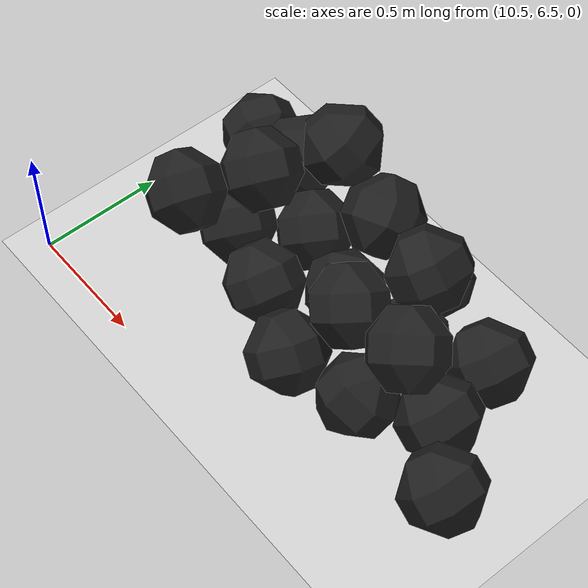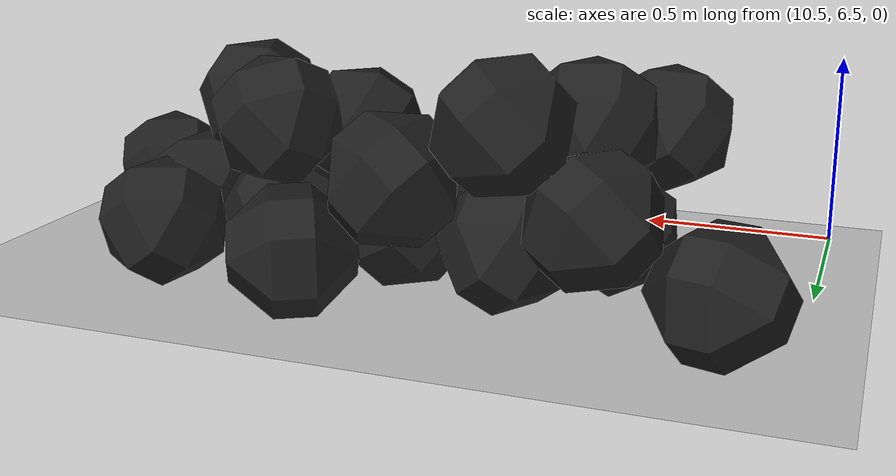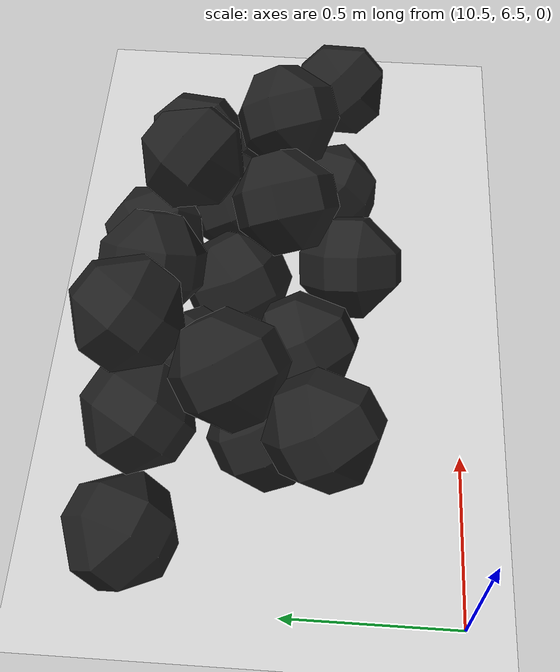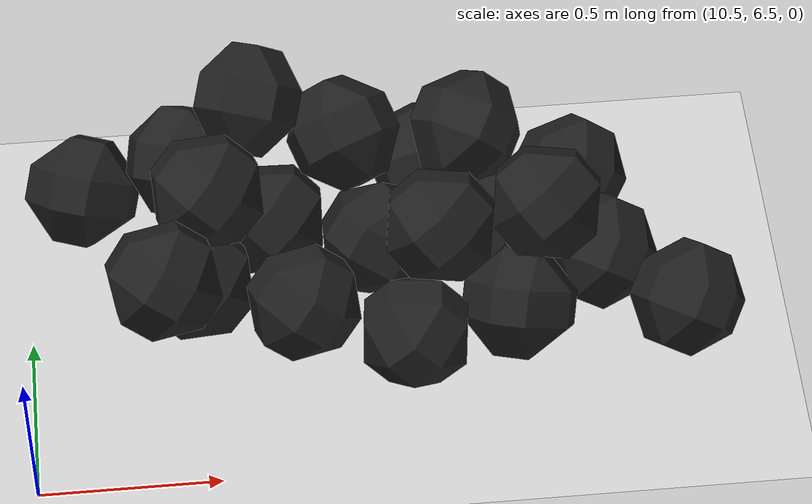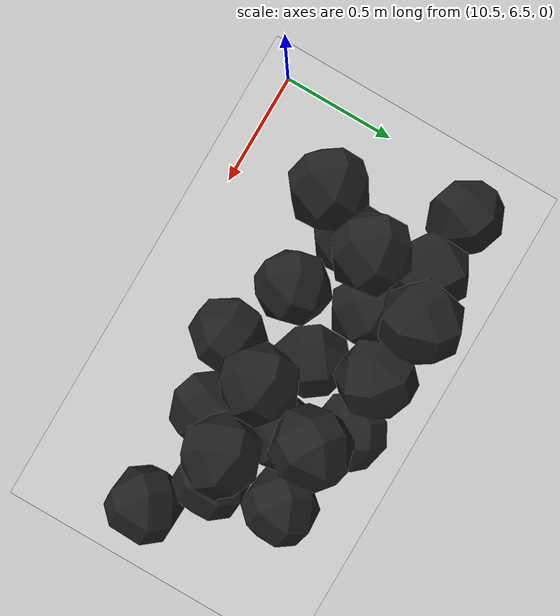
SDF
<sdf version="1.7">
 <world name="default">
  <model name="ground_plane">
   <static>1</static>
   <link name="link">
    <collision name="collision">
     <geometry><plane><normal>0 0 1</normal><size>100 100</size></plane></geometry>
     <surface><friction><ode><mu>100</mu><mu2>50</mu2></ode></friction></surface>
    </collision>
    <visual name="visual">
     <cast_shadows>0</cast_shadows>
     <geometry><plane><normal>0 0 1</normal><size>100 100</size></plane></geometry>
     <material>
      <script><uri>file://media/materials/scripts/gazebo.material</uri><name>Gazebo/Grey</name></script>
     </material>
    </visual>
   </link>
  </model>
  <model name="haoduomiantiaa_0">
   <link name="link_0">
    <inertial>
     <mass>0.2</mass>
     <inertia>
      <ixx>0.166667</ixx>
      <ixy>0</ixy>
      <ixz>0</ixz>
      <iyy>0.166667</iyy>
      <iyz>0</iyz>
      <izz>0.166667</izz>
     </inertia>
    </inertial>
    <visual name="visual">
     <geometry>
      <mesh>
       <uri>/home/lihaoyang/catkin_ws/src/pudong_gazebo/world/stl/haoduomianti.stl</uri>
       <scale>1 1 1</scale>
      </mesh>
     </geometry>
     <material>
      <lighting>1</lighting>
      <script><uri>file://media/materials/scripts/gazebo.material</uri><name>Gazebo/Black</name></script>
      <shader type="pixel"><normal_map>__default__</normal_map></shader>
      <ambient>0.3 0.3 0.3 1</ambient>
      <diffuse>0.7 0.7 0.7 1</diffuse>
      <specular>0.01 0.01 0.01 1</specular>
      <emissive>0 0 0 1</emissive>
     </material>
    </visual>
    <collision name="collision">
     <geometry>
      <mesh>
       <uri>/home/lihaoyang/catkin_ws/src/pudong_gazebo/world/stl/haoduomianti.stl</uri>
       <scale>1 1 1</scale>
      </mesh>
     </geometry>
     <surface>
      <friction>
       <ode><mu>1</mu><mu2>1</mu2><fdir1>0 0 0</fdir1><slip1>0</slip1><slip2>0</slip2></ode>
       <torsional>
        <coefficient>1</coefficient>
        <patch_radius>0</patch_radius>
        <surface_radius>0</surface_radius>
        <use_patch_radius>1</use_patch_radius>
        <ode><slip>0</slip></ode>
       </torsional>
      </friction>
      <bounce><restitution_coefficient>0</restitution_coefficient><threshold>1e+06</threshold></bounce>
      <contact>
       <collide_without_contact>0</collide_without_contact>
       <collide_without_contact_bitmask>1</collide_without_contact_bitmask>
       <collide_bitmask>1</collide_bitmask>
       <ode>
        <soft_cfm>0</soft_cfm>
        <soft_erp>0.2</soft_erp>
        <kp>1e+13</kp>
        <kd>1</kd>
        <max_vel>0.01</max_vel>
        <min_depth>0</min_depth>
       </ode>
       <bullet>
        <split_impulse>1</split_impulse>
        <split_impulse_penetration_threshold>-0.01</split_impulse_penetration_threshold>
        <soft_cfm>0</soft_cfm>
        <soft_erp>0.2</soft_erp>
        <kp>1e+13</kp>
        <kd>1</kd>
       </bullet>
      </contact>
     </surface>
    </collision>
   </link>
   <static>0</static>
   <pose>10.9703 7.07477 -0.114428 0.785502 -0.590777 -1.48834</pose>
  </model>
  <model name="haoduomiantiaa_2">
   <link name="link_0">
    <inertial>
     <mass>0.2</mass>
     <inertia>
      <ixx>0.166667</ixx>
      <ixy>0</ixy>
      <ixz>0</ixz>
      <iyy>0.166667</iyy>
      <iyz>0</iyz>
      <izz>0.166667</izz>
     </inertia>
    </inertial>
    <visual name="visual">
     <geometry>
      <mesh>
       <uri>/home/lihaoyang/catkin_ws/src/pudong_gazebo/world/stl/haoduomianti.stl</uri>
       <scale>1 1 1</scale>
      </mesh>
     </geometry>
     <material>
      <lighting>1</lighting>
      <script><uri>file://media/materials/scripts/gazebo.material</uri><name>Gazebo/Black</name></script>
      <shader type="pixel"><normal_map>__default__</normal_map></shader>
      <ambient>0.3 0.3 0.3 1</ambient>
      <diffuse>0.7 0.7 0.7 1</diffuse>
      <specular>0.01 0.01 0.01 1</specular>
      <emissive>0 0 0 1</emissive>
     </material>
    </visual>
    <collision name="collision">
     <geometry>
      <mesh>
       <uri>/home/lihaoyang/catkin_ws/src/pudong_gazebo/world/stl/haoduomianti.stl</uri>
       <scale>1 1 1</scale>
      </mesh>
     </geometry>
     <surface>
      <friction>
       <ode><mu>1</mu><mu2>1</mu2><fdir1>0 0 0</fdir1><slip1>0</slip1><slip2>0</slip2></ode>
       <torsional>
        <coefficient>1</coefficient>
        <patch_radius>0</patch_radius>
        <surface_radius>0</surface_radius>
        <use_patch_radius>1</use_patch_radius>
        <ode><slip>0</slip></ode>
       </torsional>
      </friction>
      <bounce><restitution_coefficient>0</restitution_coefficient><threshold>1e+06</threshold></bounce>
      <contact>
       <collide_without_contact>0</collide_without_contact>
       <collide_without_contact_bitmask>1</collide_without_contact_bitmask>
       <collide_bitmask>1</collide_bitmask>
       <ode>
        <soft_cfm>0</soft_cfm>
        <soft_erp>0.2</soft_erp>
        <kp>1e+13</kp>
        <kd>1</kd>
        <max_vel>0.01</max_vel>
        <min_depth>0</min_depth>
       </ode>
       <bullet>
        <split_impulse>1</split_impulse>
        <split_impulse_penetration_threshold>-0.01</split_impulse_penetration_threshold>
        <soft_cfm>0</soft_cfm>
        <soft_erp>0.2</soft_erp>
        <kp>1e+13</kp>
        <kd>1</kd>
       </bullet>
      </contact>
     </surface>
    </collision>
   </link>
   <static>0</static>
   <pose>11.3904 7.29753 -0.074721 1.52005 -0.78479 0.66353</pose>
  </model>
  <model name="haoduomiantiaa_4">
   <link name="link_0">
    <inertial>
     <mass>0.2</mass>
     <inertia>
      <ixx>0.166667</ixx>
      <ixy>0</ixy>
      <ixz>0</ixz>
      <iyy>0.166667</iyy>
      <iyz>0</iyz>
      <izz>0.166667</izz>
     </inertia>
    </inertial>
    <visual name="visual">
     <geometry>
      <mesh>
       <uri>/home/lihaoyang/catkin_ws/src/pudong_gazebo/world/stl/haoduomianti.stl</uri>
       <scale>1 1 1</scale>
      </mesh>
     </geometry>
     <material>
      <lighting>1</lighting>
      <script><uri>file://media/materials/scripts/gazebo.material</uri><name>Gazebo/Black</name></script>
      <shader type="pixel"><normal_map>__default__</normal_map></shader>
      <ambient>0.3 0.3 0.3 1</ambient>
      <diffuse>0.7 0.7 0.7 1</diffuse>
      <specular>0.01 0.01 0.01 1</specular>
      <emissive>0 0 0 1</emissive>
     </material>
    </visual>
    <collision name="collision">
     <geometry>
      <mesh>
       <uri>/home/lihaoyang/catkin_ws/src/pudong_gazebo/world/stl/haoduomianti.stl</uri>
       <scale>1 1 1</scale>
      </mesh>
     </geometry>
     <surface>
      <friction>
       <ode><mu>1</mu><mu2>1</mu2><fdir1>0 0 0</fdir1><slip1>0</slip1><slip2>0</slip2></ode>
       <torsional>
        <coefficient>1</coefficient>
        <patch_radius>0</patch_radius>
        <surface_radius>0</surface_radius>
        <use_patch_radius>1</use_patch_radius>
        <ode><slip>0</slip></ode>
       </torsional>
      </friction>
      <bounce><restitution_coefficient>0</restitution_coefficient><threshold>1e+06</threshold></bounce>
      <contact>
       <collide_without_contact>0</collide_without_contact>
       <collide_without_contact_bitmask>1</collide_without_contact_bitmask>
       <collide_bitmask>1</collide_bitmask>
       <ode>
        <soft_cfm>0</soft_cfm>
        <soft_erp>0.2</soft_erp>
        <kp>1e+13</kp>
        <kd>1</kd>
        <max_vel>0.01</max_vel>
        <min_depth>0</min_depth>
       </ode>
       <bullet>
        <split_impulse>1</split_impulse>
        <split_impulse_penetration_threshold>-0.01</split_impulse_penetration_threshold>
        <soft_cfm>0</soft_cfm>
        <soft_erp>0.2</soft_erp>
        <kp>1e+13</kp>
        <kd>1</kd>
       </bullet>
      </contact>
     </surface>
    </collision>
   </link>
   <static>0</static>
   <pose>11.7831 7.21328 -0.115536 0.785312 -0.615513 0.494711</pose>
  </model>
  <model name="haoduomiantiaa_5">
   <link name="link_0">
    <inertial>
     <mass>0.2</mass>
     <inertia>
      <ixx>0.166667</ixx>
      <ixy>0</ixy>
      <ixz>0</ixz>
      <iyy>0.166667</iyy>
      <iyz>0</iyz>
      <izz>0.166667</izz>
     </inertia>
    </inertial>
    <visual name="visual">
     <geometry>
      <mesh>
       <uri>/home/lihaoyang/catkin_ws/src/pudong_gazebo/world/stl/haoduomianti.stl</uri>
       <scale>1 1 1</scale>
      </mesh>
     </geometry>
     <material>
      <lighting>1</lighting>
      <script><uri>file://media/materials/scripts/gazebo.material</uri><name>Gazebo/Black</name></script>
      <shader type="pixel"><normal_map>__default__</normal_map></shader>
      <ambient>0.3 0.3 0.3 1</ambient>
      <diffuse>0.7 0.7 0.7 1</diffuse>
      <specular>0.01 0.01 0.01 1</specular>
      <emissive>0 0 0 1</emissive>
     </material>
    </visual>
    <collision name="collision">
     <geometry>
      <mesh>
       <uri>/home/lihaoyang/catkin_ws/src/pudong_gazebo/world/stl/haoduomianti.stl</uri>
       <scale>1 1 1</scale>
      </mesh>
     </geometry>
     <surface>
      <friction>
       <ode><mu>1</mu><mu2>1</mu2><fdir1>0 0 0</fdir1><slip1>0</slip1><slip2>0</slip2></ode>
       <torsional>
        <coefficient>1</coefficient>
        <patch_radius>0</patch_radius>
        <surface_radius>0</surface_radius>
        <use_patch_radius>1</use_patch_radius>
        <ode><slip>0</slip></ode>
       </torsional>
      </friction>
      <bounce><restitution_coefficient>0</restitution_coefficient><threshold>1e+06</threshold></bounce>
      <contact>
       <collide_without_contact>0</collide_without_contact>
       <collide_without_contact_bitmask>1</collide_without_contact_bitmask>
       <collide_bitmask>1</collide_bitmask>
       <ode>
        <soft_cfm>0</soft_cfm>
        <soft_erp>0.2</soft_erp>
        <kp>1e+13</kp>
        <kd>1</kd>
        <max_vel>0.01</max_vel>
        <min_depth>0</min_depth>
       </ode>
       <bullet>
        <split_impulse>1</split_impulse>
        <split_impulse_penetration_threshold>-0.01</split_impulse_penetration_threshold>
        <soft_cfm>0</soft_cfm>
        <soft_erp>0.2</soft_erp>
        <kp>1e+13</kp>
        <kd>1</kd>
       </bullet>
      </contact>
     </surface>
    </collision>
   </link>
   <static>0</static>
   <pose>11.726 6.96018 -0.079986 0.135129 -0.780812 -1.98714</pose>
  </model>
  <model name="haoduomiantiaa_9">
   <link name="link_0">
    <inertial>
     <mass>0.2</mass>
     <inertia>
      <ixx>0.166667</ixx>
      <ixy>0</ixy>
      <ixz>0</ixz>
      <iyy>0.166667</iyy>
      <iyz>0</iyz>
      <izz>0.166667</izz>
     </inertia>
    </inertial>
    <visual name="visual">
     <geometry>
      <mesh>
       <uri>/home/lihaoyang/catkin_ws/src/pudong_gazebo/world/stl/haoduomianti.stl</uri>
       <scale>1 1 1</scale>
      </mesh>
     </geometry>
     <material>
      <lighting>1</lighting>
      <script><uri>file://media/materials/scripts/gazebo.material</uri><name>Gazebo/Black</name></script>
      <shader type="pixel"><normal_map>__default__</normal_map></shader>
      <ambient>0.3 0.3 0.3 1</ambient>
      <diffuse>0.7 0.7 0.7 1</diffuse>
      <specular>0.01 0.01 0.01 1</specular>
      <emissive>0 0 0 1</emissive>
     </material>
    </visual>
    <collision name="collision">
     <geometry>
      <mesh>
       <uri>/home/lihaoyang/catkin_ws/src/pudong_gazebo/world/stl/haoduomianti.stl</uri>
       <scale>1 1 1</scale>
      </mesh>
     </geometry>
     <surface>
      <friction>
       <ode><mu>1</mu><mu2>1</mu2><fdir1>0 0 0</fdir1><slip1>0</slip1><slip2>0</slip2></ode>
       <torsional>
        <coefficient>1</coefficient>
        <patch_radius>0</patch_radius>
        <surface_radius>0</surface_radius>
        <use_patch_radius>1</use_patch_radius>
        <ode><slip>0</slip></ode>
       </torsional>
      </friction>
      <bounce><restitution_coefficient>0</restitution_coefficient><threshold>1e+06</threshold></bounce>
      <contact>
       <collide_without_contact>0</collide_without_contact>
       <collide_without_contact_bitmask>1</collide_without_contact_bitmask>
       <collide_bitmask>1</collide_bitmask>
       <ode>
        <soft_cfm>0</soft_cfm>
        <soft_erp>0.2</soft_erp>
        <kp>1e+13</kp>
        <kd>1</kd>
        <max_vel>0.01</max_vel>
        <min_depth>0</min_depth>
       </ode>
       <bullet>
        <split_impulse>1</split_impulse>
        <split_impulse_penetration_threshold>-0.01</split_impulse_penetration_threshold>
        <soft_cfm>0</soft_cfm>
        <soft_erp>0.2</soft_erp>
        <kp>1e+13</kp>
        <kd>1</kd>
       </bullet>
      </contact>
     </surface>
    </collision>
   </link>
   <static>0</static>
   <pose>10.8001 7.38111 -0.073257 0.034518 -0.785081 1.21512</pose>
  </model>
  <model name="haoduomiantiaa_10">
   <link name="link_0">
    <inertial>
     <mass>0.2</mass>
     <inertia>
      <ixx>0.166667</ixx>
      <ixy>0</ixy>
      <ixz>0</ixz>
      <iyy>0.166667</iyy>
      <iyz>0</iyz>
      <izz>0.166667</izz>
     </inertia>
    </inertial>
    <visual name="visual">
     <geometry>
      <mesh>
       <uri>/home/lihaoyang/catkin_ws/src/pudong_gazebo/world/stl/haoduomianti.stl</uri>
       <scale>1 1 1</scale>
      </mesh>
     </geometry>
     <material>
      <lighting>1</lighting>
      <script><uri>file://media/materials/scripts/gazebo.material</uri><name>Gazebo/Black</name></script>
      <shader type="pixel"><normal_map>__default__</normal_map></shader>
      <ambient>0.3 0.3 0.3 1</ambient>
      <diffuse>0.7 0.7 0.7 1</diffuse>
      <specular>0.01 0.01 0.01 1</specular>
      <emissive>0 0 0 1</emissive>
     </material>
    </visual>
    <collision name="collision">
     <geometry>
      <mesh>
       <uri>/home/lihaoyang/catkin_ws/src/pudong_gazebo/world/stl/haoduomianti.stl</uri>
       <scale>1 1 1</scale>
      </mesh>
     </geometry>
     <surface>
      <friction>
       <ode><mu>1</mu><mu2>1</mu2><fdir1>0 0 0</fdir1><slip1>0</slip1><slip2>0</slip2></ode>
       <torsional>
        <coefficient>1</coefficient>
        <patch_radius>0</patch_radius>
        <surface_radius>0</surface_radius>
        <use_patch_radius>1</use_patch_radius>
        <ode><slip>0</slip></ode>
       </torsional>
      </friction>
      <bounce><restitution_coefficient>0</restitution_coefficient><threshold>1e+06</threshold></bounce>
      <contact>
       <collide_without_contact>0</collide_without_contact>
       <collide_without_contact_bitmask>1</collide_without_contact_bitmask>
       <collide_bitmask>1</collide_bitmask>
       <ode>
        <soft_cfm>0</soft_cfm>
        <soft_erp>0.2</soft_erp>
        <kp>1e+13</kp>
        <kd>1</kd>
        <max_vel>0.01</max_vel>
        <min_depth>0</min_depth>
       </ode>
       <bullet>
        <split_impulse>1</split_impulse>
        <split_impulse_penetration_threshold>-0.01</split_impulse_penetration_threshold>
        <soft_cfm>0</soft_cfm>
        <soft_erp>0.2</soft_erp>
        <kp>1e+13</kp>
        <kd>1</kd>
       </bullet>
      </contact>
     </surface>
    </collision>
   </link>
   <static>0</static>
   <pose>11.5642 6.94524 -0.089413 1.28812 -0.765146 0.086896</pose>
  </model>
  <model name="haoduomiantiaa_24">
   <link name="link_0">
    <inertial>
     <mass>0.2</mass>
     <inertia>
      <ixx>0.166667</ixx>
      <ixy>0</ixy>
      <ixz>0</ixz>
      <iyy>0.166667</iyy>
      <iyz>0</iyz>
      <izz>0.166667</izz>
     </inertia>
    </inertial>
    <visual name="visual">
     <geometry>
      <mesh>
       <uri>/home/lihaoyang/catkin_ws/src/pudong_gazebo/world/stl/haoduomianti.stl</uri>
       <scale>1 1 1</scale>
      </mesh>
     </geometry>
     <material>
      <lighting>1</lighting>
      <script><uri>file://media/materials/scripts/gazebo.material</uri><name>Gazebo/Black</name></script>
      <shader type="pixel"><normal_map>__default__</normal_map></shader>
      <ambient>0.3 0.3 0.3 1</ambient>
      <diffuse>0.7 0.7 0.7 1</diffuse>
      <specular>0.01 0.01 0.01 1</specular>
      <emissive>0 0 0 1</emissive>
     </material>
    </visual>
    <collision name="collision">
     <geometry>
      <mesh>
       <uri>/home/lihaoyang/catkin_ws/src/pudong_gazebo/world/stl/haoduomianti.stl</uri>
       <scale>1 1 1</scale>
      </mesh>
     </geometry>
     <surface>
      <friction>
       <ode><mu>1</mu><mu2>1</mu2><fdir1>0 0 0</fdir1><slip1>0</slip1><slip2>0</slip2></ode>
       <torsional>
        <coefficient>1</coefficient>
        <patch_radius>0</patch_radius>
        <surface_radius>0</surface_radius>
        <use_patch_radius>1</use_patch_radius>
        <ode><slip>0</slip></ode>
       </torsional>
      </friction>
      <bounce><restitution_coefficient>0</restitution_coefficient><threshold>1e+06</threshold></bounce>
      <contact>
       <collide_without_contact>0</collide_without_contact>
       <collide_without_contact_bitmask>1</collide_without_contact_bitmask>
       <collide_bitmask>1</collide_bitmask>
       <ode>
        <soft_cfm>0</soft_cfm>
        <soft_erp>0.2</soft_erp>
        <kp>1e+13</kp>
        <kd>1</kd>
        <max_vel>0.01</max_vel>
        <min_depth>0</min_depth>
       </ode>
       <bullet>
        <split_impulse>1</split_impulse>
        <split_impulse_penetration_threshold>-0.01</split_impulse_penetration_threshold>
        <soft_cfm>0</soft_cfm>
        <soft_erp>0.2</soft_erp>
        <kp>1e+13</kp>
        <kd>1</kd>
       </bullet>
      </contact>
     </surface>
    </collision>
   </link>
   <static>0</static>
   <pose>12.3137 6.8958 -0.115529 0.785392 -0.61544 -1.08539</pose>
  </model>
  <model name="haoduomiantiaa_27">
   <link name="link_0">
    <inertial>
     <mass>0.2</mass>
     <inertia>
      <ixx>0.166667</ixx>
      <ixy>0</ixy>
      <ixz>0</ixz>
      <iyy>0.166667</iyy>
      <iyz>0</iyz>
      <izz>0.166667</izz>
     </inertia>
    </inertial>
    <visual name="visual">
     <geometry>
      <mesh>
       <uri>/home/lihaoyang/catkin_ws/src/pudong_gazebo/world/stl/haoduomianti.stl</uri>
       <scale>1 1 1</scale>
      </mesh>
     </geometry>
     <material>
      <lighting>1</lighting>
      <script><uri>file://media/materials/scripts/gazebo.material</uri><name>Gazebo/Black</name></script>
      <shader type="pixel"><normal_map>__default__</normal_map></shader>
      <ambient>0.3 0.3 0.3 1</ambient>
      <diffuse>0.7 0.7 0.7 1</diffuse>
      <specular>0.01 0.01 0.01 1</specular>
      <emissive>0 0 0 1</emissive>
     </material>
    </visual>
    <collision name="collision">
     <geometry>
      <mesh>
       <uri>/home/lihaoyang/catkin_ws/src/pudong_gazebo/world/stl/haoduomianti.stl</uri>
       <scale>1 1 1</scale>
      </mesh>
     </geometry>
     <surface>
      <friction>
       <ode><mu>1</mu><mu2>1</mu2><fdir1>0 0 0</fdir1><slip1>0</slip1><slip2>0</slip2></ode>
       <torsional>
        <coefficient>1</coefficient>
        <patch_radius>0</patch_radius>
        <surface_radius>0</surface_radius>
        <use_patch_radius>1</use_patch_radius>
        <ode><slip>0</slip></ode>
       </torsional>
      </friction>
      <bounce><restitution_coefficient>0</restitution_coefficient><threshold>1e+06</threshold></bounce>
      <contact>
       <collide_without_contact>0</collide_without_contact>
       <collide_without_contact_bitmask>1</collide_without_contact_bitmask>
       <collide_bitmask>1</collide_bitmask>
       <ode>
        <soft_cfm>0</soft_cfm>
        <soft_erp>0.2</soft_erp>
        <kp>1e+13</kp>
        <kd>1</kd>
        <max_vel>0.01</max_vel>
        <min_depth>0</min_depth>
       </ode>
       <bullet>
        <split_impulse>1</split_impulse>
        <split_impulse_penetration_threshold>-0.01</split_impulse_penetration_threshold>
        <soft_cfm>0</soft_cfm>
        <soft_erp>0.2</soft_erp>
        <kp>1e+13</kp>
        <kd>1</kd>
       </bullet>
      </contact>
     </surface>
    </collision>
   </link>
   <static>0</static>
   <pose>11.5129 7.39011 -0.071305 -0.000327 -0.785292 -1.06445</pose>
  </model>
  <model name="haoduomiantiaa_30">
   <link name="link_0">
    <inertial>
     <mass>0.2</mass>
     <inertia>
      <ixx>0.166667</ixx>
      <ixy>0</ixy>
      <ixz>0</ixz>
      <iyy>0.166667</iyy>
      <iyz>0</iyz>
      <izz>0.166667</izz>
     </inertia>
    </inertial>
    <visual name="visual">
     <geometry>
      <mesh>
       <uri>/home/lihaoyang/catkin_ws/src/pudong_gazebo/world/stl/haoduomianti.stl</uri>
       <scale>1 1 1</scale>
      </mesh>
     </geometry>
     <material>
      <lighting>1</lighting>
      <script><uri>file://media/materials/scripts/gazebo.material</uri><name>Gazebo/Black</name></script>
      <shader type="pixel"><normal_map>__default__</normal_map></shader>
      <ambient>0.3 0.3 0.3 1</ambient>
      <diffuse>0.7 0.7 0.7 1</diffuse>
      <specular>0.01 0.01 0.01 1</specular>
      <emissive>0 0 0 1</emissive>
     </material>
    </visual>
    <collision name="collision">
     <geometry>
      <mesh>
       <uri>/home/lihaoyang/catkin_ws/src/pudong_gazebo/world/stl/haoduomianti.stl</uri>
       <scale>1 1 1</scale>
      </mesh>
     </geometry>
     <surface>
      <friction>
       <ode><mu>1</mu><mu2>1</mu2><fdir1>0 0 0</fdir1><slip1>0</slip1><slip2>0</slip2></ode>
       <torsional>
        <coefficient>1</coefficient>
        <patch_radius>0</patch_radius>
        <surface_radius>0</surface_radius>
        <use_patch_radius>1</use_patch_radius>
        <ode><slip>0</slip></ode>
       </torsional>
      </friction>
      <bounce><restitution_coefficient>0</restitution_coefficient><threshold>1e+06</threshold></bounce>
      <contact>
       <collide_without_contact>0</collide_without_contact>
       <collide_without_contact_bitmask>1</collide_without_contact_bitmask>
       <collide_bitmask>1</collide_bitmask>
       <ode>
        <soft_cfm>0</soft_cfm>
        <soft_erp>0.2</soft_erp>
        <kp>1e+13</kp>
        <kd>1</kd>
        <max_vel>0.01</max_vel>
        <min_depth>0</min_depth>
       </ode>
       <bullet>
        <split_impulse>1</split_impulse>
        <split_impulse_penetration_threshold>-0.01</split_impulse_penetration_threshold>
        <soft_cfm>0</soft_cfm>
        <soft_erp>0.2</soft_erp>
        <kp>1e+13</kp>
        <kd>1</kd>
       </bullet>
      </contact>
     </surface>
    </collision>
   </link>
   <static>0</static>
   <pose>11.1871 7.27623 -0.115462 0.785529 -0.615493 -1.60207</pose>
  </model>
  <model name="haoduomiantiaa_36">
   <link name="link_0">
    <inertial>
     <mass>0.2</mass>
     <inertia>
      <ixx>0.166667</ixx>
      <ixy>0</ixy>
      <ixz>0</ixz>
      <iyy>0.166667</iyy>
      <iyz>0</iyz>
      <izz>0.166667</izz>
     </inertia>
    </inertial>
    <visual name="visual">
     <geometry>
      <mesh>
       <uri>/home/lihaoyang/catkin_ws/src/pudong_gazebo/world/stl/haoduomianti.stl</uri>
       <scale>1 1 1</scale>
      </mesh>
     </geometry>
     <material>
      <lighting>1</lighting>
      <script><uri>file://media/materials/scripts/gazebo.material</uri><name>Gazebo/Black</name></script>
      <shader type="pixel"><normal_map>__default__</normal_map></shader>
      <ambient>0.3 0.3 0.3 1</ambient>
      <diffuse>0.7 0.7 0.7 1</diffuse>
      <specular>0.01 0.01 0.01 1</specular>
      <emissive>0 0 0 1</emissive>
     </material>
    </visual>
    <collision name="collision">
     <geometry>
      <mesh>
       <uri>/home/lihaoyang/catkin_ws/src/pudong_gazebo/world/stl/haoduomianti.stl</uri>
       <scale>1 1 1</scale>
      </mesh>
     </geometry>
     <surface>
      <friction>
       <ode><mu>1</mu><mu2>1</mu2><fdir1>0 0 0</fdir1><slip1>0</slip1><slip2>0</slip2></ode>
       <torsional>
        <coefficient>1</coefficient>
        <patch_radius>0</patch_radius>
        <surface_radius>0</surface_radius>
        <use_patch_radius>1</use_patch_radius>
        <ode><slip>0</slip></ode>
       </torsional>
      </friction>
      <bounce><restitution_coefficient>0</restitution_coefficient><threshold>1e+06</threshold></bounce>
      <contact>
       <collide_without_contact>0</collide_without_contact>
       <collide_without_contact_bitmask>1</collide_without_contact_bitmask>
       <collide_bitmask>1</collide_bitmask>
       <ode>
        <soft_cfm>0</soft_cfm>
        <soft_erp>0.2</soft_erp>
        <kp>1e+13</kp>
        <kd>1</kd>
        <max_vel>0.01</max_vel>
        <min_depth>0</min_depth>
       </ode>
       <bullet>
        <split_impulse>1</split_impulse>
        <split_impulse_penetration_threshold>-0.01</split_impulse_penetration_threshold>
        <soft_cfm>0</soft_cfm>
        <soft_erp>0.2</soft_erp>
        <kp>1e+13</kp>
        <kd>1</kd>
       </bullet>
      </contact>
     </surface>
    </collision>
   </link>
   <static>0</static>
   <pose>10.8898 7.45551 0.020163 0.430193 -0.688784 -2.43037</pose>
  </model>
  <model name="haoduomiantiaa_51">
   <link name="link_0">
    <inertial>
     <mass>0.2</mass>
     <inertia>
      <ixx>0.166667</ixx>
      <ixy>0</ixy>
      <ixz>0</ixz>
      <iyy>0.166667</iyy>
      <iyz>0</iyz>
      <izz>0.166667</izz>
     </inertia>
    </inertial>
    <visual name="visual">
     <geometry>
      <mesh>
       <uri>/home/lihaoyang/catkin_ws/src/pudong_gazebo/world/stl/haoduomianti.stl</uri>
       <scale>1 1 1</scale>
      </mesh>
     </geometry>
     <material>
      <lighting>1</lighting>
      <script><uri>file://media/materials/scripts/gazebo.material</uri><name>Gazebo/Black</name></script>
      <shader type="pixel"><normal_map>__default__</normal_map></shader>
      <ambient>0.3 0.3 0.3 1</ambient>
      <diffuse>0.7 0.7 0.7 1</diffuse>
      <specular>0.01 0.01 0.01 1</specular>
      <emissive>0 0 0 1</emissive>
     </material>
    </visual>
    <collision name="collision">
     <geometry>
      <mesh>
       <uri>/home/lihaoyang/catkin_ws/src/pudong_gazebo/world/stl/haoduomianti.stl</uri>
       <scale>1 1 1</scale>
      </mesh>
     </geometry>
     <surface>
      <friction>
       <ode><mu>1</mu><mu2>1</mu2><fdir1>0 0 0</fdir1><slip1>0</slip1><slip2>0</slip2></ode>
       <torsional>
        <coefficient>1</coefficient>
        <patch_radius>0</patch_radius>
        <surface_radius>0</surface_radius>
        <use_patch_radius>1</use_patch_radius>
        <ode><slip>0</slip></ode>
       </torsional>
      </friction>
      <bounce><restitution_coefficient>0</restitution_coefficient><threshold>1e+06</threshold></bounce>
      <contact>
       <collide_without_contact>0</collide_without_contact>
       <collide_without_contact_bitmask>1</collide_without_contact_bitmask>
       <collide_bitmask>1</collide_bitmask>
       <ode>
        <soft_cfm>0</soft_cfm>
        <soft_erp>0.2</soft_erp>
        <kp>1e+13</kp>
        <kd>1</kd>
        <max_vel>0.01</max_vel>
        <min_depth>0</min_depth>
       </ode>
       <bullet>
        <split_impulse>1</split_impulse>
        <split_impulse_penetration_threshold>-0.01</split_impulse_penetration_threshold>
        <soft_cfm>0</soft_cfm>
        <soft_erp>0.2</soft_erp>
        <kp>1e+13</kp>
        <kd>1</kd>
       </bullet>
      </contact>
     </surface>
    </collision>
   </link>
   <static>0</static>
   <pose>12.0953 7.07959 -0.11551 0.785458 -0.615455 1.00898</pose>
  </model>
  <model name="haoduomiantiaa_54">
   <link name="link_0">
    <inertial>
     <mass>0.2</mass>
     <inertia>
      <ixx>0.166667</ixx>
      <ixy>0</ixy>
      <ixz>0</ixz>
      <iyy>0.166667</iyy>
      <iyz>0</iyz>
      <izz>0.166667</izz>
     </inertia>
    </inertial>
    <visual name="visual">
     <geometry>
      <mesh>
       <uri>/home/lihaoyang/catkin_ws/src/pudong_gazebo/world/stl/haoduomianti.stl</uri>
       <scale>1 1 1</scale>
      </mesh>
     </geometry>
     <material>
      <lighting>1</lighting>
      <script><uri>file://media/materials/scripts/gazebo.material</uri><name>Gazebo/Black</name></script>
      <shader type="pixel"><normal_map>__default__</normal_map></shader>
      <ambient>0.3 0.3 0.3 1</ambient>
      <diffuse>0.7 0.7 0.7 1</diffuse>
      <specular>0.01 0.01 0.01 1</specular>
      <emissive>0 0 0 1</emissive>
     </material>
    </visual>
    <collision name="collision">
     <geometry>
      <mesh>
       <uri>/home/lihaoyang/catkin_ws/src/pudong_gazebo/world/stl/haoduomianti.stl</uri>
       <scale>1 1 1</scale>
      </mesh>
     </geometry>
     <surface>
      <friction>
       <ode><mu>1</mu><mu2>1</mu2><fdir1>0 0 0</fdir1><slip1>0</slip1><slip2>0</slip2></ode>
       <torsional>
        <coefficient>1</coefficient>
        <patch_radius>0</patch_radius>
        <surface_radius>0</surface_radius>
        <use_patch_radius>1</use_patch_radius>
        <ode><slip>0</slip></ode>
       </torsional>
      </friction>
      <bounce><restitution_coefficient>0</restitution_coefficient><threshold>1e+06</threshold></bounce>
      <contact>
       <collide_without_contact>0</collide_without_contact>
       <collide_without_contact_bitmask>1</collide_without_contact_bitmask>
       <collide_bitmask>1</collide_bitmask>
       <ode>
        <soft_cfm>0</soft_cfm>
        <soft_erp>0.2</soft_erp>
        <kp>1e+13</kp>
        <kd>1</kd>
        <max_vel>0.01</max_vel>
        <min_depth>0</min_depth>
       </ode>
       <bullet>
        <split_impulse>1</split_impulse>
        <split_impulse_penetration_threshold>-0.01</split_impulse_penetration_threshold>
        <soft_cfm>0</soft_cfm>
        <soft_erp>0.2</soft_erp>
        <kp>1e+13</kp>
        <kd>1</kd>
       </bullet>
      </contact>
     </surface>
    </collision>
   </link>
   <static>0</static>
   <pose>11.2455 7.01292 -0.106921 0.977221 -0.692096 0.656037</pose>
  </model>
  <model name="haoduomiantiaa_80">
   <link name="link_0">
    <inertial>
     <mass>0.2</mass>
     <inertia>
      <ixx>0.166667</ixx>
      <ixy>0</ixy>
      <ixz>0</ixz>
      <iyy>0.166667</iyy>
      <iyz>0</iyz>
      <izz>0.166667</izz>
     </inertia>
    </inertial>
    <visual name="visual">
     <geometry>
      <mesh>
       <uri>/home/lihaoyang/catkin_ws/src/pudong_gazebo/world/stl/haoduomianti.stl</uri>
       <scale>1 1 1</scale>
      </mesh>
     </geometry>
     <material>
      <lighting>1</lighting>
      <script><uri>file://media/materials/scripts/gazebo.material</uri><name>Gazebo/Black</name></script>
      <shader type="pixel"><normal_map>__default__</normal_map></shader>
      <ambient>0.3 0.3 0.3 1</ambient>
      <diffuse>0.7 0.7 0.7 1</diffuse>
      <specular>0.01 0.01 0.01 1</specular>
      <emissive>0 0 0 1</emissive>
     </material>
    </visual>
    <collision name="collision">
     <geometry>
      <mesh>
       <uri>/home/lihaoyang/catkin_ws/src/pudong_gazebo/world/stl/haoduomianti.stl</uri>
       <scale>1 1 1</scale>
      </mesh>
     </geometry>
     <surface>
      <friction>
       <ode><mu>1</mu><mu2>1</mu2><fdir1>0 0 0</fdir1><slip1>0</slip1><slip2>0</slip2></ode>
       <torsional>
        <coefficient>1</coefficient>
        <patch_radius>0</patch_radius>
        <surface_radius>0</surface_radius>
        <use_patch_radius>1</use_patch_radius>
        <ode><slip>0</slip></ode>
       </torsional>
      </friction>
      <bounce><restitution_coefficient>0</restitution_coefficient><threshold>1e+06</threshold></bounce>
      <contact>
       <collide_without_contact>0</collide_without_contact>
       <collide_without_contact_bitmask>1</collide_without_contact_bitmask>
       <collide_bitmask>1</collide_bitmask>
       <ode>
        <soft_cfm>0</soft_cfm>
        <soft_erp>0.2</soft_erp>
        <kp>1e+13</kp>
        <kd>1</kd>
        <max_vel>0.01</max_vel>
        <min_depth>0</min_depth>
       </ode>
       <bullet>
        <split_impulse>1</split_impulse>
        <split_impulse_penetration_threshold>-0.01</split_impulse_penetration_threshold>
        <soft_cfm>0</soft_cfm>
        <soft_erp>0.2</soft_erp>
        <kp>1e+13</kp>
        <kd>1</kd>
       </bullet>
      </contact>
     </surface>
    </collision>
   </link>
   <static>0</static>
   <pose>11.925 7.05146 0.141728 0.834791 -0.6075 2.41503</pose>
  </model>
  <model name="haoduomiantiaa_83">
   <link name="link_0">
    <inertial>
     <mass>0.2</mass>
     <inertia>
      <ixx>0.166667</ixx>
      <ixy>0</ixy>
      <ixz>0</ixz>
      <iyy>0.166667</iyy>
      <iyz>0</iyz>
      <izz>0.166667</izz>
     </inertia>
    </inertial>
    <visual name="visual">
     <geometry>
      <mesh>
       <uri>/home/lihaoyang/catkin_ws/src/pudong_gazebo/world/stl/haoduomianti.stl</uri>
       <scale>1 1 1</scale>
      </mesh>
     </geometry>
     <material>
      <lighting>1</lighting>
      <script><uri>file://media/materials/scripts/gazebo.material</uri><name>Gazebo/Black</name></script>
      <shader type="pixel"><normal_map>__default__</normal_map></shader>
      <ambient>0.3 0.3 0.3 1</ambient>
      <diffuse>0.7 0.7 0.7 1</diffuse>
      <specular>0.01 0.01 0.01 1</specular>
      <emissive>0 0 0 1</emissive>
     </material>
    </visual>
    <collision name="collision">
     <geometry>
      <mesh>
       <uri>/home/lihaoyang/catkin_ws/src/pudong_gazebo/world/stl/haoduomianti.stl</uri>
       <scale>1 1 1</scale>
      </mesh>
     </geometry>
     <surface>
      <friction>
       <ode><mu>1</mu><mu2>1</mu2><fdir1>0 0 0</fdir1><slip1>0</slip1><slip2>0</slip2></ode>
       <torsional>
        <coefficient>1</coefficient>
        <patch_radius>0</patch_radius>
        <surface_radius>0</surface_radius>
        <use_patch_radius>1</use_patch_radius>
        <ode><slip>0</slip></ode>
       </torsional>
      </friction>
      <bounce><restitution_coefficient>0</restitution_coefficient><threshold>1e+06</threshold></bounce>
      <contact>
       <collide_without_contact>0</collide_without_contact>
       <collide_without_contact_bitmask>1</collide_without_contact_bitmask>
       <collide_bitmask>1</collide_bitmask>
       <ode>
        <soft_cfm>0</soft_cfm>
        <soft_erp>0.2</soft_erp>
        <kp>1e+13</kp>
        <kd>1</kd>
        <max_vel>0.01</max_vel>
        <min_depth>0</min_depth>
       </ode>
       <bullet>
        <split_impulse>1</split_impulse>
        <split_impulse_penetration_threshold>-0.01</split_impulse_penetration_threshold>
        <soft_cfm>0</soft_cfm>
        <soft_erp>0.2</soft_erp>
        <kp>1e+13</kp>
        <kd>1</kd>
       </bullet>
      </contact>
     </surface>
    </collision>
   </link>
   <static>0</static>
   <pose>11.6304 7.06845 0.086979 0.74026 -0.680948 2.51211</pose>
  </model>
  <model name="haoduomiantiaa_86">
   <link name="link_0">
    <inertial>
     <mass>0.2</mass>
     <inertia>
      <ixx>0.166667</ixx>
      <ixy>0</ixy>
      <ixz>0</ixz>
      <iyy>0.166667</iyy>
      <iyz>0</iyz>
      <izz>0.166667</izz>
     </inertia>
    </inertial>
    <visual name="visual">
     <geometry>
      <mesh>
       <uri>/home/lihaoyang/catkin_ws/src/pudong_gazebo/world/stl/haoduomianti.stl</uri>
       <scale>1 1 1</scale>
      </mesh>
     </geometry>
     <material>
      <lighting>1</lighting>
      <script><uri>file://media/materials/scripts/gazebo.material</uri><name>Gazebo/Black</name></script>
      <shader type="pixel"><normal_map>__default__</normal_map></shader>
      <ambient>0.3 0.3 0.3 1</ambient>
      <diffuse>0.7 0.7 0.7 1</diffuse>
      <specular>0.01 0.01 0.01 1</specular>
      <emissive>0 0 0 1</emissive>
     </material>
    </visual>
    <collision name="collision">
     <geometry>
      <mesh>
       <uri>/home/lihaoyang/catkin_ws/src/pudong_gazebo/world/stl/haoduomianti.stl</uri>
       <scale>1 1 1</scale>
      </mesh>
     </geometry>
     <surface>
      <friction>
       <ode><mu>1</mu><mu2>1</mu2><fdir1>0 0 0</fdir1><slip1>0</slip1><slip2>0</slip2></ode>
       <torsional>
        <coefficient>1</coefficient>
        <patch_radius>0</patch_radius>
        <surface_radius>0</surface_radius>
        <use_patch_radius>1</use_patch_radius>
        <ode><slip>0</slip></ode>
       </torsional>
      </friction>
      <bounce><restitution_coefficient>0</restitution_coefficient><threshold>1e+06</threshold></bounce>
      <contact>
       <collide_without_contact>0</collide_without_contact>
       <collide_without_contact_bitmask>1</collide_without_contact_bitmask>
       <collide_bitmask>1</collide_bitmask>
       <ode>
        <soft_cfm>0</soft_cfm>
        <soft_erp>0.2</soft_erp>
        <kp>1e+13</kp>
        <kd>1</kd>
        <max_vel>0.01</max_vel>
        <min_depth>0</min_depth>
       </ode>
       <bullet>
        <split_impulse>1</split_impulse>
        <split_impulse_penetration_threshold>-0.01</split_impulse_penetration_threshold>
        <soft_cfm>0</soft_cfm>
        <soft_erp>0.2</soft_erp>
        <kp>1e+13</kp>
        <kd>1</kd>
       </bullet>
      </contact>
     </surface>
    </collision>
   </link>
   <static>0</static>
   <pose>11.429 7.41406 0.064166 0.758559 -0.715862 -0.122571</pose>
  </model>
  <model name="haoduomiantiaa_93">
   <link name="link_0">
    <inertial>
     <mass>0.2</mass>
     <inertia>
      <ixx>0.166667</ixx>
      <ixy>0</ixy>
      <ixz>0</ixz>
      <iyy>0.166667</iyy>
      <iyz>0</iyz>
      <izz>0.166667</izz>
     </inertia>
    </inertial>
    <visual name="visual">
     <geometry>
      <mesh>
       <uri>/home/lihaoyang/catkin_ws/src/pudong_gazebo/world/stl/haoduomianti.stl</uri>
       <scale>1 1 1</scale>
      </mesh>
     </geometry>
     <material>
      <lighting>1</lighting>
      <script><uri>file://media/materials/scripts/gazebo.material</uri><name>Gazebo/Black</name></script>
      <shader type="pixel"><normal_map>__default__</normal_map></shader>
      <ambient>0.3 0.3 0.3 1</ambient>
      <diffuse>0.7 0.7 0.7 1</diffuse>
      <specular>0.01 0.01 0.01 1</specular>
      <emissive>0 0 0 1</emissive>
     </material>
    </visual>
    <collision name="collision">
     <geometry>
      <mesh>
       <uri>/home/lihaoyang/catkin_ws/src/pudong_gazebo/world/stl/haoduomianti.stl</uri>
       <scale>1 1 1</scale>
      </mesh>
     </geometry>
     <surface>
      <friction>
       <ode><mu>1</mu><mu2>1</mu2><fdir1>0 0 0</fdir1><slip1>0</slip1><slip2>0</slip2></ode>
       <torsional>
        <coefficient>1</coefficient>
        <patch_radius>0</patch_radius>
        <surface_radius>0</surface_radius>
        <use_patch_radius>1</use_patch_radius>
        <ode><slip>0</slip></ode>
       </torsional>
      </friction>
      <bounce><restitution_coefficient>0</restitution_coefficient><threshold>1e+06</threshold></bounce>
      <contact>
       <collide_without_contact>0</collide_without_contact>
       <collide_without_contact_bitmask>1</collide_without_contact_bitmask>
       <collide_bitmask>1</collide_bitmask>
       <ode>
        <soft_cfm>0</soft_cfm>
        <soft_erp>0.2</soft_erp>
        <kp>1e+13</kp>
        <kd>1</kd>
        <max_vel>0.01</max_vel>
        <min_depth>0</min_depth>
       </ode>
       <bullet>
        <split_impulse>1</split_impulse>
        <split_impulse_penetration_threshold>-0.01</split_impulse_penetration_threshold>
        <soft_cfm>0</soft_cfm>
        <soft_erp>0.2</soft_erp>
        <kp>1e+13</kp>
        <kd>1</kd>
       </bullet>
      </contact>
     </surface>
    </collision>
   </link>
   <static>0</static>
   <pose>10.8956 6.91169 0.114228 0.874427 -0.609409 -1.44277</pose>
  </model>
  <model name="haoduomiantiaa_96">
   <link name="link_0">
    <inertial>
     <mass>0.2</mass>
     <inertia>
      <ixx>0.166667</ixx>
      <ixy>0</ixy>
      <ixz>0</ixz>
      <iyy>0.166667</iyy>
      <iyz>0</iyz>
      <izz>0.166667</izz>
     </inertia>
    </inertial>
    <visual name="visual">
     <geometry>
      <mesh>
       <uri>/home/lihaoyang/catkin_ws/src/pudong_gazebo/world/stl/haoduomianti.stl</uri>
       <scale>1 1 1</scale>
      </mesh>
     </geometry>
     <material>
      <lighting>1</lighting>
      <script><uri>file://media/materials/scripts/gazebo.material</uri><name>Gazebo/Black</name></script>
      <shader type="pixel"><normal_map>__default__</normal_map></shader>
      <ambient>0.3 0.3 0.3 1</ambient>
      <diffuse>0.7 0.7 0.7 1</diffuse>
      <specular>0.01 0.01 0.01 1</specular>
      <emissive>0 0 0 1</emissive>
     </material>
    </visual>
    <collision name="collision">
     <geometry>
      <mesh>
       <uri>/home/lihaoyang/catkin_ws/src/pudong_gazebo/world/stl/haoduomianti.stl</uri>
       <scale>1 1 1</scale>
      </mesh>
     </geometry>
     <surface>
      <friction>
       <ode><mu>1</mu><mu2>1</mu2><fdir1>0 0 0</fdir1><slip1>0</slip1><slip2>0</slip2></ode>
       <torsional>
        <coefficient>1</coefficient>
        <patch_radius>0</patch_radius>
        <surface_radius>0</surface_radius>
        <use_patch_radius>1</use_patch_radius>
        <ode><slip>0</slip></ode>
       </torsional>
      </friction>
      <bounce><restitution_coefficient>0</restitution_coefficient><threshold>1e+06</threshold></bounce>
      <contact>
       <collide_without_contact>0</collide_without_contact>
       <collide_without_contact_bitmask>1</collide_without_contact_bitmask>
       <collide_bitmask>1</collide_bitmask>
       <ode>
        <soft_cfm>0</soft_cfm>
        <soft_erp>0.2</soft_erp>
        <kp>1e+13</kp>
        <kd>1</kd>
        <max_vel>0.01</max_vel>
        <min_depth>0</min_depth>
       </ode>
       <bullet>
        <split_impulse>1</split_impulse>
        <split_impulse_penetration_threshold>-0.01</split_impulse_penetration_threshold>
        <soft_cfm>0</soft_cfm>
        <soft_erp>0.2</soft_erp>
        <kp>1e+13</kp>
        <kd>1</kd>
       </bullet>
      </contact>
     </surface>
    </collision>
   </link>
   <static>0</static>
   <pose>11.0969 7.46279 0.215641 0.727082 -0.435187 -0.689702</pose>
  </model>
  <model name="haoduomiantiaa_101">
   <link name="link_0">
    <inertial>
     <mass>0.2</mass>
     <inertia>
      <ixx>0.166667</ixx>
      <ixy>0</ixy>
      <ixz>0</ixz>
      <iyy>0.166667</iyy>
      <iyz>0</iyz>
      <izz>0.166667</izz>
     </inertia>
    </inertial>
    <visual name="visual">
     <geometry>
      <mesh>
       <uri>/home/lihaoyang/catkin_ws/src/pudong_gazebo/world/stl/haoduomianti.stl</uri>
       <scale>1 1 1</scale>
      </mesh>
     </geometry>
     <material>
      <lighting>1</lighting>
      <script><uri>file://media/materials/scripts/gazebo.material</uri><name>Gazebo/Black</name></script>
      <shader type="pixel"><normal_map>__default__</normal_map></shader>
      <ambient>0.3 0.3 0.3 1</ambient>
      <diffuse>0.7 0.7 0.7 1</diffuse>
      <specular>0.01 0.01 0.01 1</specular>
      <emissive>0 0 0 1</emissive>
     </material>
    </visual>
    <collision name="collision">
     <geometry>
      <mesh>
       <uri>/home/lihaoyang/catkin_ws/src/pudong_gazebo/world/stl/haoduomianti.stl</uri>
       <scale>1 1 1</scale>
      </mesh>
     </geometry>
     <surface>
      <friction>
       <ode><mu>1</mu><mu2>1</mu2><fdir1>0 0 0</fdir1><slip1>0</slip1><slip2>0</slip2></ode>
       <torsional>
        <coefficient>1</coefficient>
        <patch_radius>0</patch_radius>
        <surface_radius>0</surface_radius>
        <use_patch_radius>1</use_patch_radius>
        <ode><slip>0</slip></ode>
       </torsional>
      </friction>
      <bounce><restitution_coefficient>0</restitution_coefficient><threshold>1e+06</threshold></bounce>
      <contact>
       <collide_without_contact>0</collide_without_contact>
       <collide_without_contact_bitmask>1</collide_without_contact_bitmask>
       <collide_bitmask>1</collide_bitmask>
       <ode>
        <soft_cfm>0</soft_cfm>
        <soft_erp>0.2</soft_erp>
        <kp>1e+13</kp>
        <kd>1</kd>
        <max_vel>0.01</max_vel>
        <min_depth>0</min_depth>
       </ode>
       <bullet>
        <split_impulse>1</split_impulse>
        <split_impulse_penetration_threshold>-0.01</split_impulse_penetration_threshold>
        <soft_cfm>0</soft_cfm>
        <soft_erp>0.2</soft_erp>
        <kp>1e+13</kp>
        <kd>1</kd>
       </bullet>
      </contact>
     </surface>
    </collision>
   </link>
   <static>0</static>
   <pose>11.0021 7.1647 0.166979 0.82166 -0.598143 0.629503</pose>
  </model>
  <model name="haoduomiantiaa_111">
   <link name="link_0">
    <inertial>
     <mass>0.2</mass>
     <inertia>
      <ixx>0.166667</ixx>
      <ixy>0</ixy>
      <ixz>0</ixz>
      <iyy>0.166667</iyy>
      <iyz>0</iyz>
      <izz>0.166667</izz>
     </inertia>
    </inertial>
    <visual name="visual">
     <geometry>
      <mesh>
       <uri>/home/lihaoyang/catkin_ws/src/pudong_gazebo/world/stl/haoduomianti.stl</uri>
       <scale>1 1 1</scale>
      </mesh>
     </geometry>
     <material>
      <lighting>1</lighting>
      <script><uri>file://media/materials/scripts/gazebo.material</uri><name>Gazebo/Black</name></script>
      <shader type="pixel"><normal_map>__default__</normal_map></shader>
      <ambient>0.3 0.3 0.3 1</ambient>
      <diffuse>0.7 0.7 0.7 1</diffuse>
      <specular>0.01 0.01 0.01 1</specular>
      <emissive>0 0 0 1</emissive>
     </material>
    </visual>
    <collision name="collision">
     <geometry>
      <mesh>
       <uri>/home/lihaoyang/catkin_ws/src/pudong_gazebo/world/stl/haoduomianti.stl</uri>
       <scale>1 1 1</scale>
      </mesh>
     </geometry>
     <surface>
      <friction>
       <ode><mu>1</mu><mu2>1</mu2><fdir1>0 0 0</fdir1><slip1>0</slip1><slip2>0</slip2></ode>
       <torsional>
        <coefficient>1</coefficient>
        <patch_radius>0</patch_radius>
        <surface_radius>0</surface_radius>
        <use_patch_radius>1</use_patch_radius>
        <ode><slip>0</slip></ode>
       </torsional>
      </friction>
      <bounce><restitution_coefficient>0</restitution_coefficient><threshold>1e+06</threshold></bounce>
      <contact>
       <collide_without_contact>0</collide_without_contact>
       <collide_without_contact_bitmask>1</collide_without_contact_bitmask>
       <collide_bitmask>1</collide_bitmask>
       <ode>
        <soft_cfm>0</soft_cfm>
        <soft_erp>0.2</soft_erp>
        <kp>1e+13</kp>
        <kd>1</kd>
        <max_vel>0.01</max_vel>
        <min_depth>0</min_depth>
       </ode>
       <bullet>
        <split_impulse>1</split_impulse>
        <split_impulse_penetration_threshold>-0.01</split_impulse_penetration_threshold>
        <soft_cfm>0</soft_cfm>
        <soft_erp>0.2</soft_erp>
        <kp>1e+13</kp>
        <kd>1</kd>
       </bullet>
      </contact>
     </surface>
    </collision>
   </link>
   <static>0</static>
   <pose>12.0464 7.37165 -0.115469 0.785563 -0.615587 3.00842</pose>
  </model>
  <model name="haoduomiantiaa_115">
   <link name="link_0">
    <inertial>
     <mass>0.2</mass>
     <inertia>
      <ixx>0.166667</ixx>
      <ixy>0</ixy>
      <ixz>0</ixz>
      <iyy>0.166667</iyy>
      <iyz>0</iyz>
      <izz>0.166667</izz>
     </inertia>
    </inertial>
    <visual name="visual">
     <geometry>
      <mesh>
       <uri>/home/lihaoyang/catkin_ws/src/pudong_gazebo/world/stl/haoduomianti.stl</uri>
       <scale>1 1 1</scale>
      </mesh>
     </geometry>
     <material>
      <lighting>1</lighting>
      <script><uri>file://media/materials/scripts/gazebo.material</uri><name>Gazebo/Black</name></script>
      <shader type="pixel"><normal_map>__default__</normal_map></shader>
      <ambient>0.3 0.3 0.3 1</ambient>
      <diffuse>0.7 0.7 0.7 1</diffuse>
      <specular>0.01 0.01 0.01 1</specular>
      <emissive>0 0 0 1</emissive>
     </material>
    </visual>
    <collision name="collision">
     <geometry>
      <mesh>
       <uri>/home/lihaoyang/catkin_ws/src/pudong_gazebo/world/stl/haoduomianti.stl</uri>
       <scale>1 1 1</scale>
      </mesh>
     </geometry>
     <surface>
      <friction>
       <ode><mu>1</mu><mu2>1</mu2><fdir1>0 0 0</fdir1><slip1>0</slip1><slip2>0</slip2></ode>
       <torsional>
        <coefficient>1</coefficient>
        <patch_radius>0</patch_radius>
        <surface_radius>0</surface_radius>
        <use_patch_radius>1</use_patch_radius>
        <ode><slip>0</slip></ode>
       </torsional>
      </friction>
      <bounce><restitution_coefficient>0</restitution_coefficient><threshold>1e+06</threshold></bounce>
      <contact>
       <collide_without_contact>0</collide_without_contact>
       <collide_without_contact_bitmask>1</collide_without_contact_bitmask>
       <collide_bitmask>1</collide_bitmask>
       <ode>
        <soft_cfm>0</soft_cfm>
        <soft_erp>0.2</soft_erp>
        <kp>1e+13</kp>
        <kd>1</kd>
        <max_vel>0.01</max_vel>
        <min_depth>0</min_depth>
       </ode>
       <bullet>
        <split_impulse>1</split_impulse>
        <split_impulse_penetration_threshold>-0.01</split_impulse_penetration_threshold>
        <soft_cfm>0</soft_cfm>
        <soft_erp>0.2</soft_erp>
        <kp>1e+13</kp>
        <kd>1</kd>
       </bullet>
      </contact>
     </surface>
    </collision>
   </link>
   <static>0</static>
   <pose>11.6949 7.30037 0.161727 0.532359 -0.621451 -0.843223</pose>
  </model>
 </world>
</sdf>
